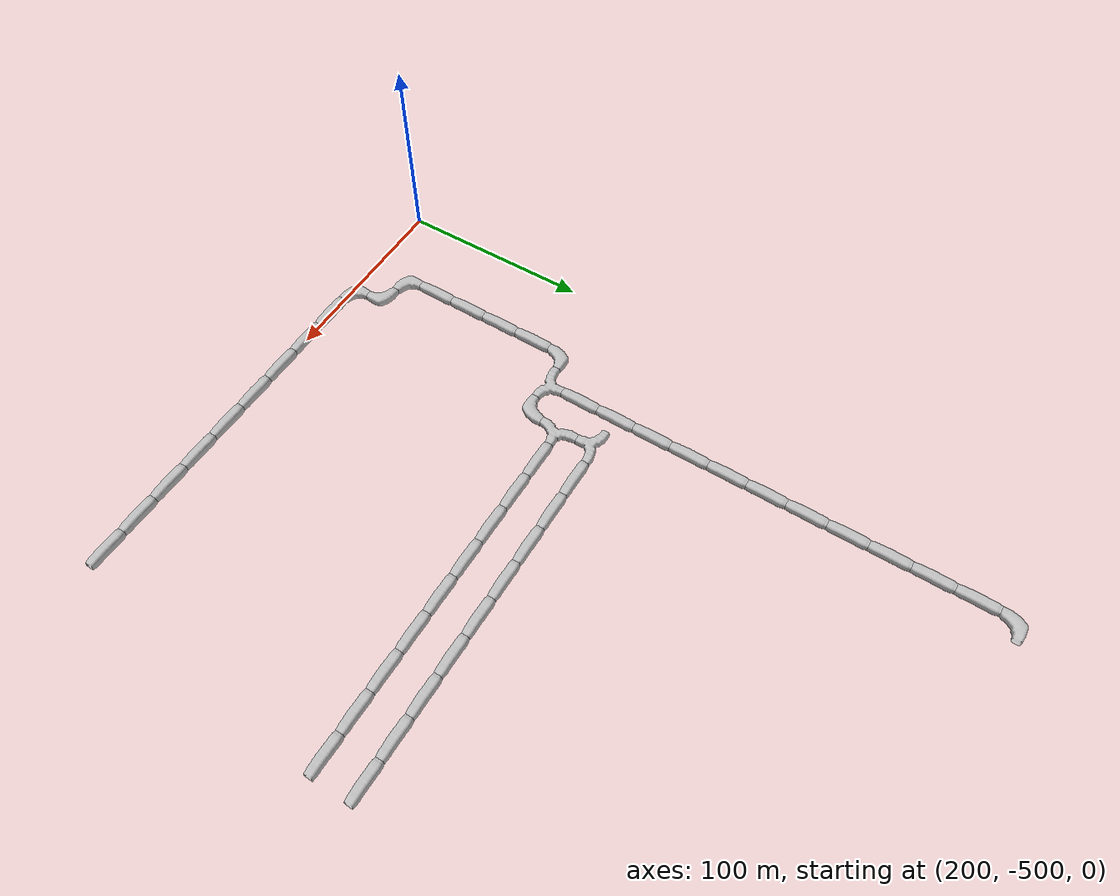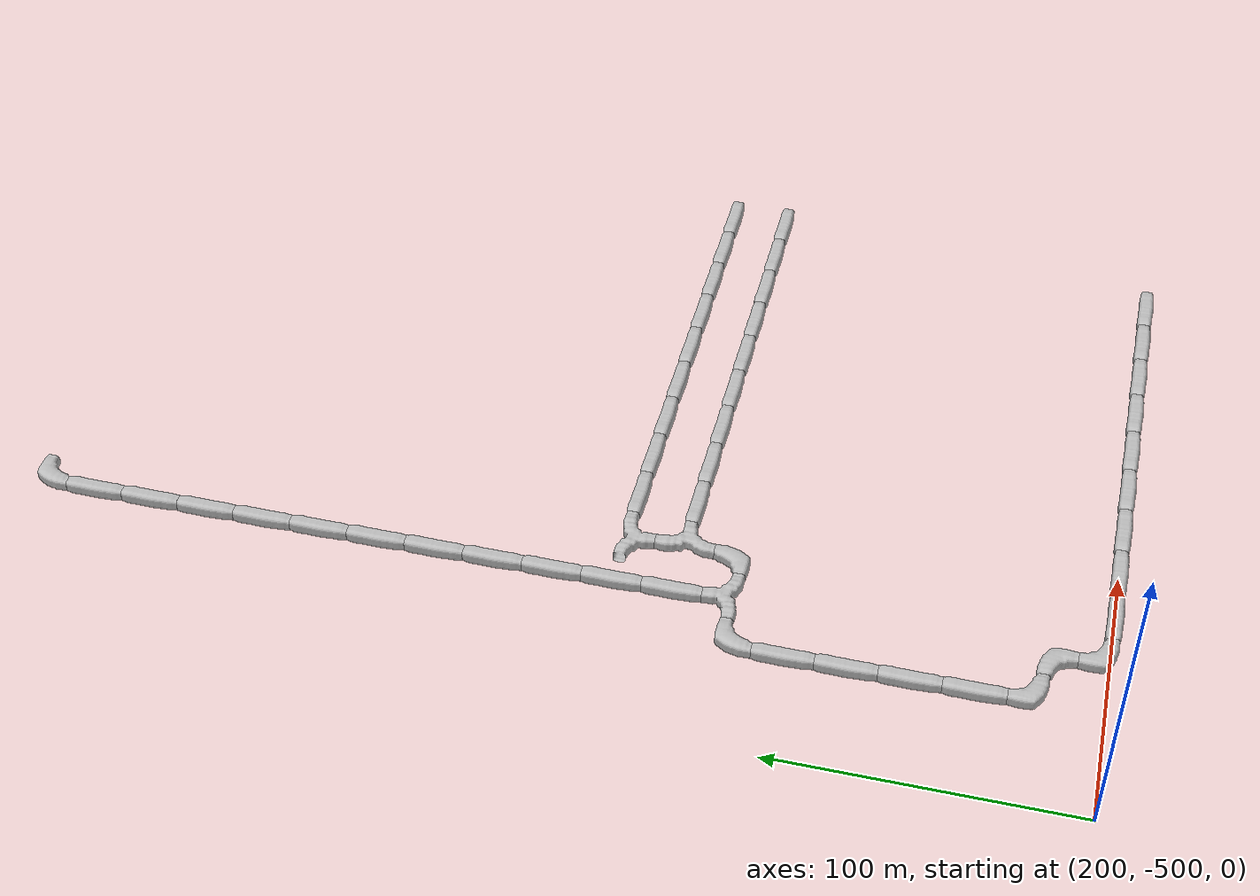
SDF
<sdf version="1.6">
 <world name="cave_8000_16">
  <include>
   <static>true</static>
   <name>cave_13_-7</name>
   <pose>260 -140 0 0 0 -1.5707963267948966</pose>
   <uri>model://cave_L_20m</uri>
  </include>
  <include>
   <static>true</static>
   <name>cave_13_-8</name>
   <pose>260 -160 0 0 0 0.0</pose>
   <uri>model://cave_straight_20m</uri>
  </include>
  <include>
   <static>true</static>
   <name>cave_13_-9</name>
   <pose>260 -180 0 0 0 0.0</pose>
   <uri>model://cave_straight_20m</uri>
  </include>
  <include>
   <static>true</static>
   <name>cave_13_-10</name>
   <pose>260 -200 0 0 0 0.0</pose>
   <uri>model://cave_straight_20m</uri>
  </include>
  <include>
   <static>true</static>
   <name>cave_13_-11</name>
   <pose>260 -220 0 0 0 0.0</pose>
   <uri>model://cave_straight_20m</uri>
  </include>
  <include>
   <static>true</static>
   <name>cave_13_-12</name>
   <pose>260 -240 0 0 0 0.0</pose>
   <uri>model://cave_straight_20m</uri>
  </include>
  <include>
   <static>true</static>
   <name>cave_13_-13</name>
   <pose>260 -260 0 0 0 0.0</pose>
   <uri>model://cave_straight_20m</uri>
  </include>
  <include>
   <static>true</static>
   <name>cave_13_-14</name>
   <pose>260 -280 0 0 0 0.0</pose>
   <uri>model://cave_straight_20m</uri>
  </include>
  <include>
   <static>true</static>
   <name>cave_13_-15</name>
   <pose>260 -300 0 0 0 0.0</pose>
   <uri>model://cave_straight_20m</uri>
  </include>
  <include>
   <static>true</static>
   <name>cave_13_-16</name>
   <pose>260 -320 0 0 0 0.0</pose>
   <uri>model://cave_straight_20m</uri>
  </include>
  <include>
   <static>true</static>
   <name>cave_13_-17</name>
   <pose>260 -340 0 0 0 0.0</pose>
   <uri>model://cave_straight_20m</uri>
  </include>
  <include>
   <static>true</static>
   <name>cave_13_-18</name>
   <pose>260 -360 0 0 0 0.0</pose>
   <uri>model://cave_straight_20m</uri>
  </include>
  <include>
   <static>true</static>
   <name>cave_13_-19</name>
   <pose>260 -380 0 0 0 0.0</pose>
   <uri>model://cave_3way_20m</uri>
  </include>
  <include>
   <static>true</static>
   <name>cave_14_-19</name>
   <pose>280 -380 0 0 0 1.5707963267948966</pose>
   <uri>model://cave_L_20m</uri>
  </include>
  <include>
   <static>true</static>
   <name>cave_14_-18</name>
   <pose>280 -360 0 0 0 -1.5707963267948966</pose>
   <uri>model://cave_3way_20m</uri>
  </include>
  <include>
   <static>true</static>
   <name>cave_15_-18</name>
   <pose>300 -360 0 0 0 1.5707963267948966</pose>
   <uri>model://cave_straight_20m</uri>
  </include>
  <include>
   <static>true</static>
   <name>cave_16_-18</name>
   <pose>320 -360 0 0 0 1.5707963267948966</pose>
   <uri>model://cave_straight_20m</uri>
  </include>
  <include>
   <static>true</static>
   <name>cave_17_-18</name>
   <pose>340 -360 0 0 0 1.5707963267948966</pose>
   <uri>model://cave_straight_20m</uri>
  </include>
  <include>
   <static>true</static>
   <name>cave_18_-18</name>
   <pose>360 -360 0 0 0 1.5707963267948966</pose>
   <uri>model://cave_straight_20m</uri>
  </include>
  <include>
   <static>true</static>
   <name>cave_19_-18</name>
   <pose>380 -360 0 0 0 1.5707963267948966</pose>
   <uri>model://cave_straight_20m</uri>
  </include>
  <include>
   <static>true</static>
   <name>cave_20_-18</name>
   <pose>400 -360 0 0 0 1.5707963267948966</pose>
   <uri>model://cave_straight_20m</uri>
  </include>
  <include>
   <static>true</static>
   <name>cave_21_-18</name>
   <pose>420 -360 0 0 0 1.5707963267948966</pose>
   <uri>model://cave_straight_20m</uri>
  </include>
  <include>
   <static>true</static>
   <name>cave_22_-18</name>
   <pose>440 -360 0 0 0 1.5707963267948966</pose>
   <uri>model://cave_straight_20m</uri>
  </include>
  <include>
   <static>true</static>
   <name>cave_23_-18</name>
   <pose>460 -360 0 0 0 1.5707963267948966</pose>
   <uri>model://cave_straight_20m</uri>
  </include>
  <include>
   <static>true</static>
   <name>cave_14_-17</name>
   <pose>280 -340 0 0 0 3.141592653589793</pose>
   <uri>model://cave_3way_20m</uri>
  </include>
  <include>
   <static>true</static>
   <name>cave_15_-17</name>
   <pose>300 -340 0 0 0 1.5707963267948966</pose>
   <uri>model://cave_straight_20m</uri>
  </include>
  <include>
   <static>true</static>
   <name>cave_16_-17</name>
   <pose>320 -340 0 0 0 1.5707963267948966</pose>
   <uri>model://cave_straight_20m</uri>
  </include>
  <include>
   <static>true</static>
   <name>cave_17_-17</name>
   <pose>340 -340 0 0 0 1.5707963267948966</pose>
   <uri>model://cave_straight_20m</uri>
  </include>
  <include>
   <static>true</static>
   <name>cave_18_-17</name>
   <pose>360 -340 0 0 0 1.5707963267948966</pose>
   <uri>model://cave_straight_20m</uri>
  </include>
  <include>
   <static>true</static>
   <name>cave_19_-17</name>
   <pose>380 -340 0 0 0 1.5707963267948966</pose>
   <uri>model://cave_straight_20m</uri>
  </include>
  <include>
   <static>true</static>
   <name>cave_20_-17</name>
   <pose>400 -340 0 0 0 1.5707963267948966</pose>
   <uri>model://cave_straight_20m</uri>
  </include>
  <include>
   <static>true</static>
   <name>cave_21_-17</name>
   <pose>420 -340 0 0 0 1.5707963267948966</pose>
   <uri>model://cave_straight_20m</uri>
  </include>
  <include>
   <static>true</static>
   <name>cave_22_-17</name>
   <pose>440 -340 0 0 0 1.5707963267948966</pose>
   <uri>model://cave_straight_20m</uri>
  </include>
  <include>
   <static>true</static>
   <name>cave_23_-17</name>
   <pose>460 -340 0 0 0 1.5707963267948966</pose>
   <uri>model://cave_straight_20m</uri>
  </include>
  <include>
   <static>true</static>
   <name>cave_12_-19</name>
   <pose>240 -380 0 0 0 -1.5707963267948966</pose>
   <uri>model://cave_L_20m</uri>
  </include>
  <include>
   <static>true</static>
   <name>cave_12_-20</name>
   <pose>240 -400 0 0 0 0.0</pose>
   <uri>model://cave_straight_20m</uri>
  </include>
  <include>
   <static>true</static>
   <name>cave_12_-21</name>
   <pose>240 -420 0 0 0 0.0</pose>
   <uri>model://cave_straight_20m</uri>
  </include>
  <include>
   <static>true</static>
   <name>cave_12_-22</name>
   <pose>240 -440 0 0 0 0.0</pose>
   <uri>model://cave_straight_20m</uri>
  </include>
  <include>
   <static>true</static>
   <name>cave_12_-23</name>
   <pose>240 -460 0 0 0 0.0</pose>
   <uri>model://cave_straight_20m</uri>
  </include>
  <include>
   <static>true</static>
   <name>cave_12_-24</name>
   <pose>240 -480 0 0 0 0.0</pose>
   <uri>model://cave_L_20m</uri>
  </include>
  <include>
   <static>true</static>
   <name>cave_13_-24</name>
   <pose>260 -480 0 0 0 3.141592653589793</pose>
   <uri>model://cave_L_20m</uri>
  </include>
  <include>
   <static>true</static>
   <name>cave_13_-25</name>
   <pose>260 -500 0 0 0 0.0</pose>
   <uri>model://cave_L_20m</uri>
  </include>
  <include>
   <static>true</static>
   <name>cave_14_-25</name>
   <pose>280 -500 0 0 0 1.5707963267948966</pose>
   <uri>model://cave_straight_20m</uri>
  </include>
  <include>
   <static>true</static>
   <name>cave_15_-25</name>
   <pose>300 -500 0 0 0 1.5707963267948966</pose>
   <uri>model://cave_straight_20m</uri>
  </include>
  <include>
   <static>true</static>
   <name>cave_16_-25</name>
   <pose>320 -500 0 0 0 1.5707963267948966</pose>
   <uri>model://cave_straight_20m</uri>
  </include>
  <include>
   <static>true</static>
   <name>cave_17_-25</name>
   <pose>340 -500 0 0 0 1.5707963267948966</pose>
   <uri>model://cave_straight_20m</uri>
  </include>
  <include>
   <static>true</static>
   <name>cave_18_-25</name>
   <pose>360 -500 0 0 0 1.5707963267948966</pose>
   <uri>model://cave_straight_20m</uri>
  </include>
  <include>
   <static>true</static>
   <name>cave_19_-25</name>
   <pose>380 -500 0 0 0 1.5707963267948966</pose>
   <uri>model://cave_straight_20m</uri>
  </include>
  <include>
   <static>true</static>
   <name>cave_20_-25</name>
   <pose>400 -500 0 0 0 1.5707963267948966</pose>
   <uri>model://cave_straight_20m</uri>
  </include>
  <include>
   <static>true</static>
   <name>cave_21_-25</name>
   <pose>420 -500 0 0 0 1.5707963267948966</pose>
   <uri>model://cave_straight_20m</uri>
  </include>
  <include>
   <static>true</static>
   <name>cave_22_-25</name>
   <pose>440 -500 0 0 0 1.5707963267948966</pose>
   <uri>model://cave_straight_20m</uri>
  </include>
 </world>
</sdf>
